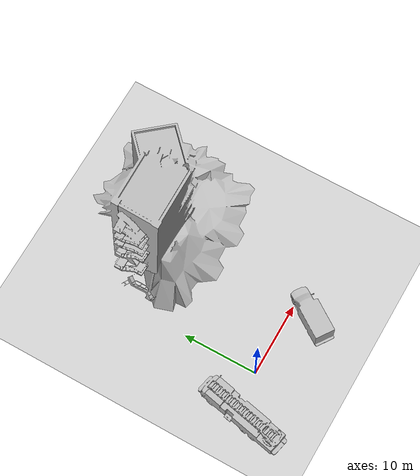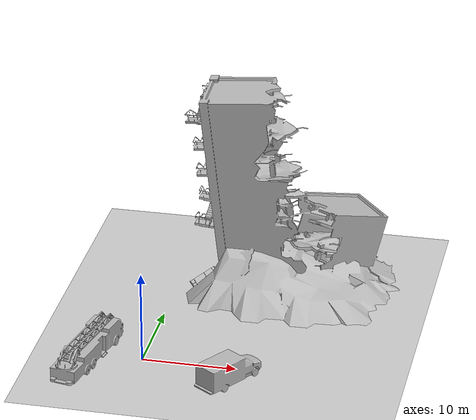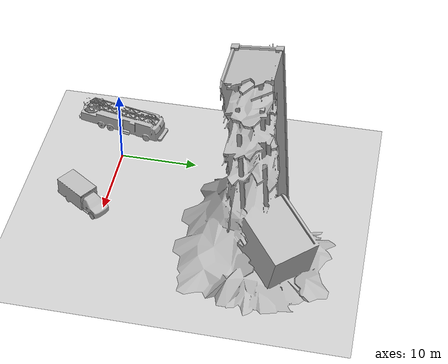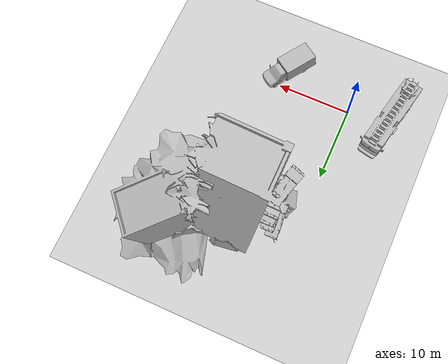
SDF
<sdf version="1.6">
 <world name="default">
  <light name="sun" type="directional">
   <pose>0 0 10 0 -0 0</pose>
   <diffuse>0.8 0.8 0.8 1</diffuse>
   <specular>0.2 0.2 0.2 1</specular>
   <attenuation>
    <range>1000</range>
    <constant>0.9</constant>
    <linear>0.01</linear>
    <quadratic>0.001</quadratic>
   </attenuation>
   <direction>-0.5 0.1 -0.9</direction>
  </light>
  <model name="ground_plane">
   <static>1</static>
   <link name="link">
    <collision name="collision">
     <geometry><plane><normal>0 0 1</normal><size>100 100</size></plane></geometry>
     <surface>
      <contact><collide_bitmask>65535</collide_bitmask></contact>
      <friction><ode><mu>100</mu><mu2>50</mu2></ode></friction>
     </surface>
    </collision>
    <visual name="visual">
     <cast_shadows>0</cast_shadows>
     <geometry><plane><normal>0 0 1</normal><size>100 100</size></plane></geometry>
     <material>
      <script><uri>file://media/materials/scripts/gazebo.material</uri><name>Gazebo/Grey</name></script>
     </material>
    </visual>
   </link>
  </model>
  <gravity>0 0 -9.8</gravity>
  <magnetic_field>6e-06 2.3e-05 -4.2e-05</magnetic_field>
  <atmosphere type="adiabatic"/>
  <physics name="default_physics" default="0" type="ode">
   <max_step_size>0.001</max_step_size>
   <real_time_factor>1</real_time_factor>
   <real_time_update_rate>1000</real_time_update_rate>
  </physics>
  <scene><ambient>0.4 0.4 0.4 1</ambient><background>0.7 0.7 0.7 1</background><shadows>1</shadows></scene>
  <spherical_coordinates>
   <surface_model>EARTH_WGS84</surface_model>
   <latitude_deg>0</latitude_deg>
   <longitude_deg>0</longitude_deg>
   <elevation>0</elevation>
   <heading_deg>0</heading_deg>
  </spherical_coordinates>
  <model name="collapsed_industrial">
   <static>1</static>
   <link name="link">
    <collision name="collision">
     <geometry><mesh><uri>model://collapsed_industrial/meshes/collapsed_industrial.dae</uri></mesh></geometry>
    </collision>
    <visual name="visual">
     <geometry><mesh><uri>model://collapsed_industrial/meshes/collapsed_industrial.dae</uri></mesh></geometry>
    </visual>
   </link>
   <pose>11.6592 19.031 0 0 -0 0</pose>
  </model>
  <model name="fire_truck">
   <static>1</static>
   <link name="link">
    <collision name="collision">
     <geometry>
      <mesh><scale>0.1 0.1 0.1</scale><uri>model://fire_truck/meshes/fire_truck.obj</uri></mesh>
     </geometry>
    </collision>
    <visual name="visual">
     <geometry>
      <mesh><scale>0.1 0.1 0.1</scale><uri>model://fire_truck/meshes/fire_truck.obj</uri></mesh>
     </geometry>
    </visual>
   </link>
   <pose>-5.53729 -0.936748 0 0 0 -0.208353</pose>
  </model>
  <model name="ambulance">
   <static>1</static>
   <link name="link">
    <collision name="collision">
     <geometry>
      <mesh><scale>0.0254 0.0254 0.0254</scale><uri>model://ambulance/meshes/ambulance.obj</uri></mesh>
     </geometry>
    </collision>
    <visual name="visual">
     <geometry>
      <mesh><scale>0.0254 0.0254 0.0254</scale><uri>model://ambulance/meshes/ambulance.obj</uri></mesh>
     </geometry>
    </visual>
   </link>
   <pose>9.7468 -2.64358 0 0 -0 2.54561</pose>
  </model>
 </world>
</sdf>
